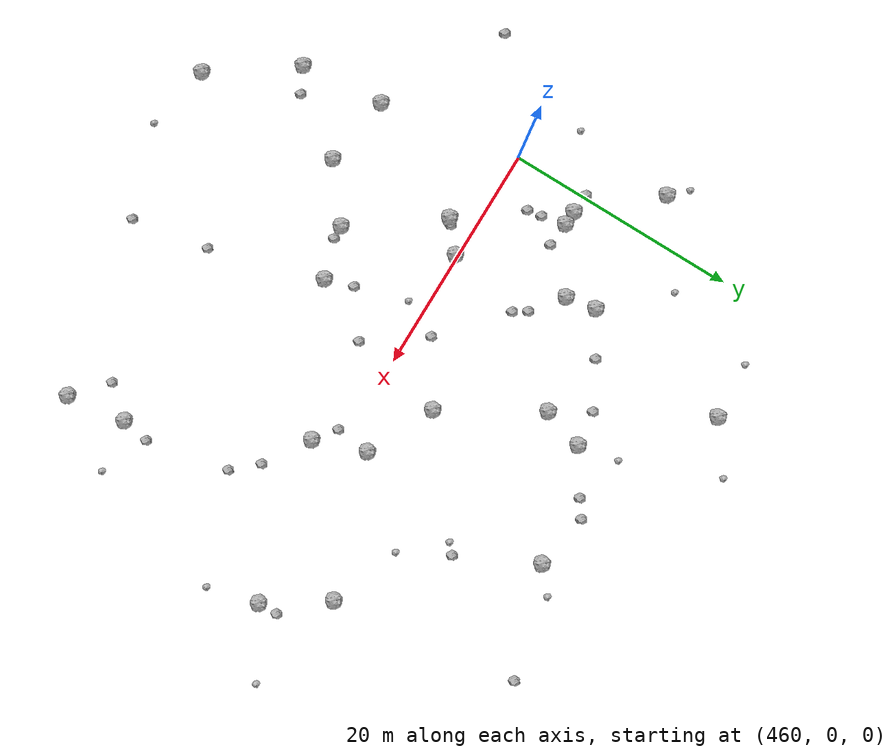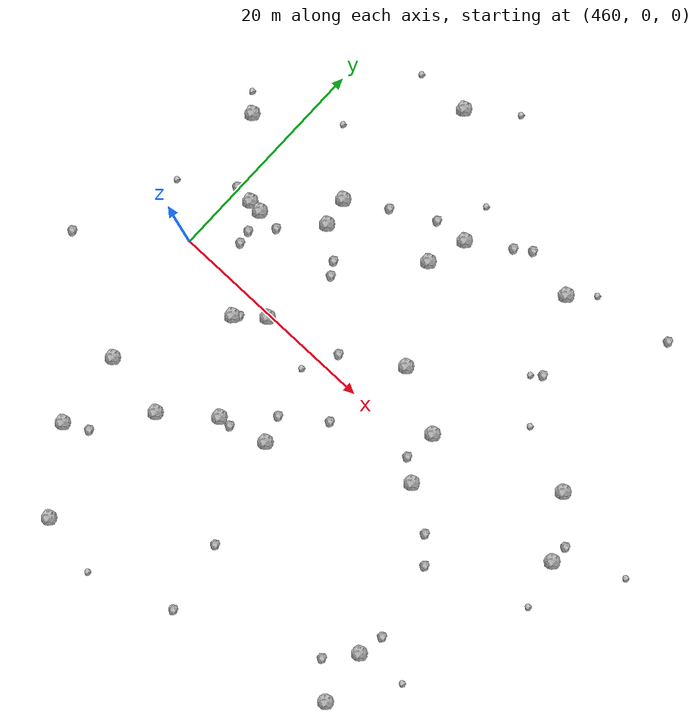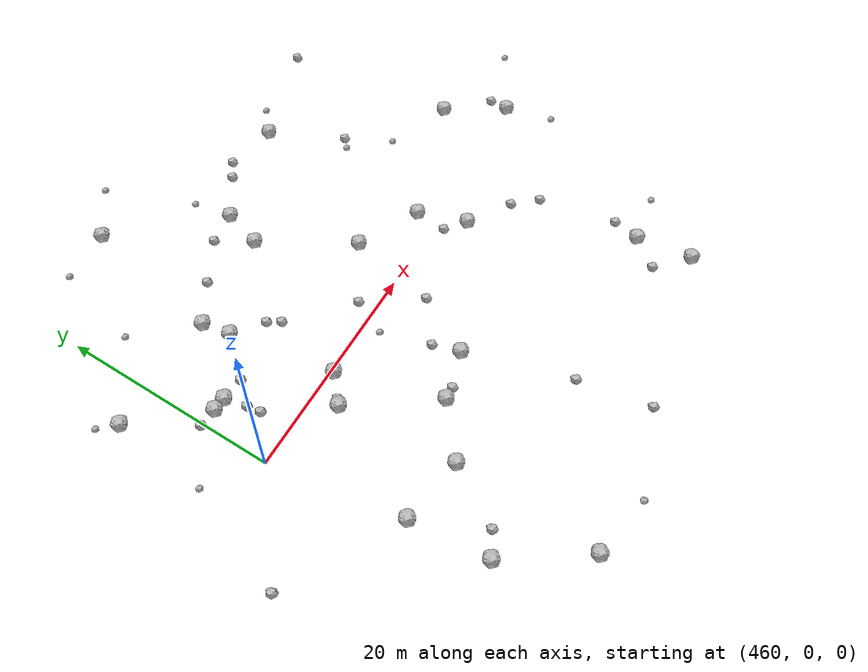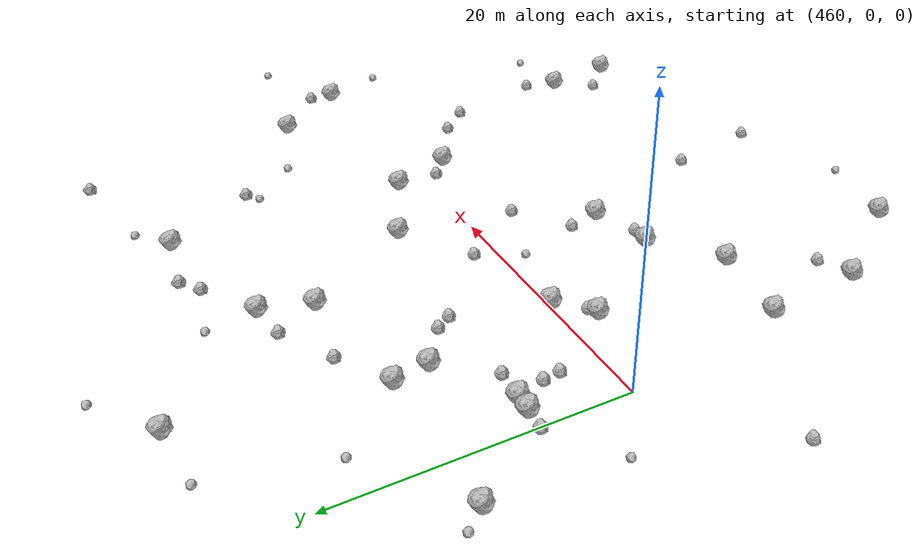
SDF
<sdf version="1.6">
 <world name="default">
  <include><uri>model://sun</uri></include>
  <model name="rock1_12_3">
   <include><uri>model://rock1</uri><pose>495.8882213905006 -16.38683071172235 0.5 0 0 0</pose></include>
  </model>
  <model name="rock1_12_4">
   <include><uri>model://rock1</uri><pose>502.8401157478266 0.9916083465184045 0.5 0 0 0</pose></include>
  </model>
  <model name="rock1_12_5">
   <include><uri>model://rock1</uri><pose>487.5439203592539 2.079319413740933 0.5 0 0 0</pose></include>
  </model>
  <model name="rock1_12_6">
   <include><uri>model://rock1</uri><pose>477.9782923704296 16.634990899654852 0.5 0 0 0</pose></include>
  </model>
  <model name="rock1_12_7">
   <include><uri>model://rock1</uri><pose>477.2132583722727 -8.467690612993405 0.5 0 0 0</pose></include>
  </model>
  <model name="rock1_12_8">
   <include><uri>model://rock1</uri><pose>462.9349524424639 -19.374399745505038 0.5 0 0 0</pose></include>
  </model>
  <model name="rock1_12_9">
   <include><uri>model://rock1</uri><pose>467.54544263042703 12.00692359562079 0.5 0 0 0</pose></include>
  </model>
  <model name="rock1_12_10">
   <include><uri>model://rock1</uri><pose>487.874560676878 19.183981366989038 0.5 0 0 0</pose></include>
  </model>
  <model name="rock1_12_11">
   <include><uri>model://rock1</uri><pose>469.92918716575514 25.287362332442797 0.5 0 0 0</pose></include>
  </model>
  <model name="rock1_12_12">
   <include><uri>model://rock1</uri><pose>476.8845651949393 13.07541757616913 0.5 0 0 0</pose></include>
  </model>
  <model name="rock1_12_13">
   <include><uri>model://rock1</uri><pose>467.41363677510066 -2.2971881632544964 0.5 0 0 0</pose></include>
  </model>
  <model name="rock1_12_14">
   <include><uri>model://rock1</uri><pose>472.739289171268 -9.615934985637608 0.5 0 0 0</pose></include>
  </model>
  <model name="rock1_12_15">
   <include><uri>model://rock1</uri><pose>496.5762296868113 -21.47870510540788 0.5 0 0 0</pose></include>
  </model>
  <model name="rock1_12_16">
   <include><uri>model://rock1</uri><pose>489.1230608913291 -2.351419757685246 0.5 0 0 0</pose></include>
  </model>
  <model name="rock1_12_17">
   <include><uri>model://rock1</uri><pose>461.5971697159491 6.264141184940449 0.5 0 0 0</pose></include>
  </model>
  <model name="rock1_12_18">
   <include><uri>model://rock1</uri><pose>468.3093143058849 -13.154673268315502 0.5 0 0 0</pose></include>
  </model>
  <model name="rock1_12_19">
   <include><uri>model://rock1</uri><pose>469.7993464639596 -0.2599507248060142 0.5 0 0 0</pose></include>
  </model>
  <model name="rock1_12_20">
   <include><uri>model://rock1</uri><pose>467.81550250769635 -26.291476593735013 0.5 0 0 0</pose></include>
  </model>
  <model name="rock1_12_21">
   <include><uri>model://rock1</uri><pose>462.836564554104 6.188645606088571 0.5 0 0 0</pose></include>
  </model>
  <model name="rock1_12_22">
   <include><uri>model://rock1</uri><pose>468.0038786509589 9.394862410119337 0.5 0 0 0</pose></include>
  </model>
  <model name="rock1_12_23">
   <include><uri>model://rock1</uri><pose>499.42160109278706 6.157292753163823 0.5 0 0 0</pose></include>
  </model>
  <model name="rock1_12_24">
   <include><uri>model://rock1</uri><pose>462.2141909420794 -12.190997913193009 0.5 0 0 0</pose></include>
  </model>
  <model name="rock1_12_25">
   <include><uri>model://rock1</uri><pose>456.34728219070496 12.141119824963475 0.5 0 0 0</pose></include>
  </model>
  <model name="rock1_12_26">
   <include><uri>model://rock1</uri><pose>481.77516023730226 4.876583883915487 0.5 0 0 0</pose></include>
  </model>
  <model name="rock2_12_0">
   <include><uri>model://rock2</uri><pose>459.8112499549805 6.432353325848879 0.3 0 0 0</pose></include>
  </model>
  <model name="rock2_12_1">
   <include><uri>model://rock2</uri><pose>465.0382289820425 -18.287696322991266 0.3 0 0 0</pose></include>
  </model>
  <model name="rock2_12_2">
   <include><uri>model://rock2</uri><pose>474.9301645534585 16.310477585520374 0.3 0 0 0</pose></include>
  </model>
  <model name="rock2_12_3">
   <include><uri>model://rock2</uri><pose>463.4462773849409 2.9319900214931565 0.3 0 0 0</pose></include>
  </model>
  <model name="rock2_12_4">
   <include><uri>model://rock2</uri><pose>492.98319145797643 -4.8304208922975285 0.3 0 0 0</pose></include>
  </model>
  <model name="rock2_12_5">
   <include><uri>model://rock2</uri><pose>494.86086156341946 -6.903272073998583 0.3 0 0 0</pose></include>
  </model>
  <model name="rock2_12_6">
   <include><uri>model://rock2</uri><pose>483.02833785156787 20.105212684523885 0.3 0 0 0</pose></include>
  </model>
  <model name="rock2_12_7">
   <include><uri>model://rock2</uri><pose>451.75042945953044 -6.4170554756290485 0.3 0 0 0</pose></include>
  </model>
  <model name="rock2_12_8">
   <include><uri>model://rock2</uri><pose>476.62309049342457 1.6223748049534272 0.3 0 0 0</pose></include>
  </model>
  <model name="rock2_12_9">
   <include><uri>model://rock2</uri><pose>470.6273008455096 7.397994460176001 0.3 0 0 0</pose></include>
  </model>
  <model name="rock2_12_10">
   <include><uri>model://rock2</uri><pose>467.84784415760305 -1.865425678713791 0.3 0 0 0</pose></include>
  </model>
  <model name="rock2_12_11">
   <include><uri>model://rock2</uri><pose>487.2421772651628 -0.8946838311154686 0.3 0 0 0</pose></include>
  </model>
  <model name="rock2_12_12">
   <include><uri>model://rock2</uri><pose>471.3556443991939 6.269786738594632 0.3 0 0 0</pose></include>
  </model>
  <model name="rock2_12_13">
   <include><uri>model://rock2</uri><pose>481.3007155251537 -24.725190764249525 0.3 0 0 0</pose></include>
  </model>
  <model name="rock2_12_14">
   <include><uri>model://rock2</uri><pose>476.43714948238596 -6.0253429566331285 0.3 0 0 0</pose></include>
  </model>
  <model name="rock2_12_15">
   <include><uri>model://rock2</uri><pose>480.11773952939643 -3.2810564513128426 0.3 0 0 0</pose></include>
  </model>
  <model name="rock2_12_16">
   <include><uri>model://rock2</uri><pose>497.2571094387321 22.306122769968276 0.3 0 0 0</pose></include>
  </model>
  <model name="rock2_12_17">
   <include><uri>model://rock2</uri><pose>464.9155389812844 6.066861335301084 0.3 0 0 0</pose></include>
  </model>
  <model name="rock2_12_18">
   <include><uri>model://rock2</uri><pose>491.15939148842057 12.548329486874827 0.3 0 0 0</pose></include>
  </model>
  <model name="rock2_12_19">
   <include><uri>model://rock2</uri><pose>496.345130234279 -13.993750558248358 0.3 0 0 0</pose></include>
  </model>
  <model name="rock2_12_20">
   <include><uri>model://rock2</uri><pose>502.83212514633067 2.729054287583388 0.3 0 0 0</pose></include>
  </model>
  <model name="rock2_12_21">
   <include><uri>model://rock2</uri><pose>481.6069348854207 19.091089233320538 0.3 0 0 0</pose></include>
  </model>
  <model name="rock2_12_22">
   <include><uri>model://rock2</uri><pose>463.2531401193769 4.195264392365928 0.3 0 0 0</pose></include>
  </model>
  <model name="rock2_12_23">
   <include><uri>model://rock2</uri><pose>471.0820755569674 14.214906541382248 0.3 0 0 0</pose></include>
  </model>
  <model name="rock2_12_24">
   <include><uri>model://rock2</uri><pose>480.10391172474743 -18.085210485790483 0.3 0 0 0</pose></include>
  </model>
  <model name="rock2_12_25">
   <include><uri>model://rock2</uri><pose>493.74196174566356 -18.938166666904063 0.3 0 0 0</pose></include>
  </model>
  <model name="rock2_12_26">
   <include><uri>model://rock2</uri><pose>473.8851317626475 -9.564184369993207 0.3 0 0 0</pose></include>
  </model>
  <model name="rock3_12_0">
   <include><uri>model://rock3</uri><pose>462.8925411801978 16.94723302838124 0.2 0 0 0</pose></include>
  </model>
  <model name="rock3_12_1">
   <include><uri>model://rock3</uri><pose>454.89932677666496 13.623750841703504 0.2 0 0 0</pose></include>
  </model>
  <model name="rock3_12_2">
   <include><uri>model://rock3</uri><pose>503.98812441293893 -3.389727509110081 0.2 0 0 0</pose></include>
  </model>
  <model name="rock3_12_3">
   <include><uri>model://rock3</uri><pose>464.9714028754154 25.0374983280798 0.2 0 0 0</pose></include>
  </model>
  <model name="rock3_12_4">
   <include><uri>model://rock3</uri><pose>493.3803013397898 8.426086404376328 0.2 0 0 0</pose></include>
  </model>
  <model name="rock3_12_5">
   <include><uri>model://rock3</uri><pose>500.41881277789787 -15.809857010726475 0.2 0 0 0</pose></include>
  </model>
  <model name="rock3_12_6">
   <include><uri>model://rock3</uri><pose>473.52162601304536 -27.498964445952005 0.2 0 0 0</pose></include>
  </model>
  <model name="rock3_12_7">
   <include><uri>model://rock3</uri><pose>490.33377362268243 11.788350684253395 0.2 0 0 0</pose></include>
  </model>
  <model name="rock3_12_8">
   <include><uri>model://rock3</uri><pose>455.4161248880428 3.232206837742673 0.2 0 0 0</pose></include>
  </model>
  <model name="rock3_12_9">
   <include><uri>model://rock3</uri><pose>475.08025690878617 -1.5667100016854256 0.2 0 0 0</pose></include>
  </model>
  <model name="rock3_12_10">
   <include><uri>model://rock3</uri><pose>477.2901022624643 20.19384953313771 0.2 0 0 0</pose></include>
  </model>
  <model name="rock3_12_11">
   <include><uri>model://rock3</uri><pose>473.9976125325708 28.371941459952644 0.2 0 0 0</pose></include>
  </model>
  <model name="rock3_12_12">
   <include><uri>model://rock3</uri><pose>489.94555239027886 21.032373943268453 0.2 0 0 0</pose></include>
  </model>
  <model name="rock3_12_13">
   <include><uri>model://rock3</uri><pose>508.59559219599066 4.290952337966999 0.2 0 0 0</pose></include>
  </model>
 </world>
</sdf>
